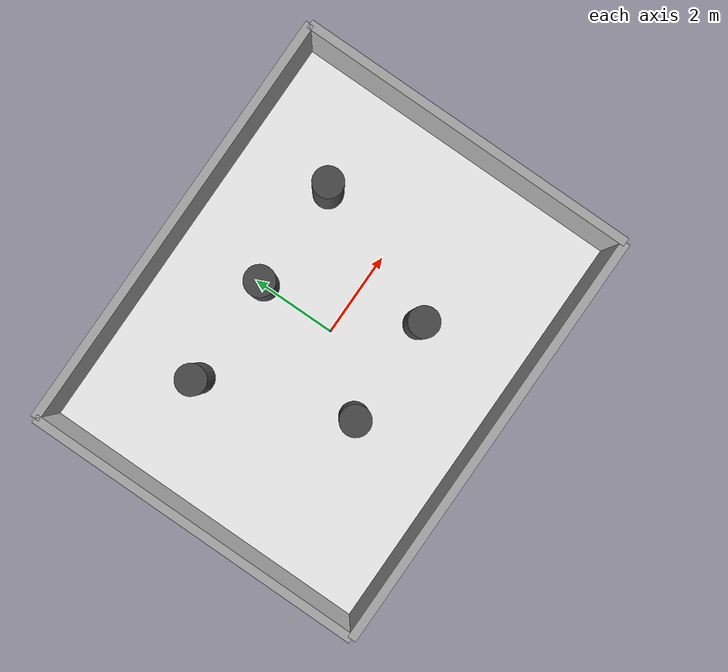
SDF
<?xml version="1.0"?>
<sdf version="1.10">
  <world name="hexapod_test">
    <!-- Gazebo Sensor System Pluins for IMU and LIDAR-->
    <plugin filename="gz-sim-physics-system"
            name="gz::sim::systems::Physics"/>

    <plugin filename="gz-sim-user-commands-system"
            name="gz::sim::systems::UserCommands"/>

    <plugin filename="gz-sim-scene-broadcaster-system"
            name="gz::sim::systems::SceneBroadcaster"/>

    <plugin filename="gz-sim-sensors-system"
            name="gz::sim::systems::Sensors">
      <render_engine>ogre2</render_engine>
    </plugin>

    <plugin filename="gz-sim-imu-system"
            name="gz::sim::systems::Imu"/>

    <!-- WORLD PHYSICS                                             -->

    <gravity>0 0 -9.81</gravity>

    <physics name="default_physics" type="ode">
      <max_step_size>0.001</max_step_size>
      <real_time_factor>1.0</real_time_factor>
      <real_time_update_rate>1000</real_time_update_rate>
    </physics>

    <!-- GROUND                                                    -->
    <!-- Gazebo-style dark grey                                    -->

    <model name="floor">
      <static>true</static>
      <pose>0 0 -0.05 0 0 0</pose>

      <link name="floor_link">

        <collision name="floor_collision">
          <geometry>
            <box>
              <size>10 8 0.1</size>
            </box>
          </geometry>

          <surface>
            <friction>
              <ode>
                <mu>1.0</mu>
                <mu2>1.0</mu2>
              </ode>
            </friction>
          </surface>
        </collision>

        <visual name="floor_visual">
         <geometry>
          <box>
           <size>10 8 0.1</size>
          </box>
         </geometry>

  <material>
    <ambient>0.9 0.9 0.9 1</ambient>
    <diffuse>1.0 1.0 1.0 1</diffuse>
  </material>
</visual>

      </link>
    </model>

    <!-- NORTH WALL                                                -->

    <model name="north_wall">
      <static>true</static>
      <pose>0 4 1 0 0 0</pose>

      <link name="north_wall_link">

        <collision name="collision">
          <geometry>
            <box>
              <size>10 0.2 2</size>
            </box>
          </geometry>
        </collision>

        <visual name="visual">
          <geometry>
            <box>
              <size>10 0.2 2</size>
            </box>
          </geometry>

          <material>
            <ambient>0.60 0.60 0.60 1</ambient>
            <diffuse>0.70 0.70 0.70 1</diffuse>
          </material>
        </visual>

      </link>
    </model>

    <!-- SOUTH WALL                                                -->

    <model name="south_wall">
      <static>true</static>
      <pose>0 -4 1 0 0 0</pose>

      <link name="south_wall_link">

        <collision name="collision">
          <geometry>
            <box>
              <size>10 0.2 2</size>
            </box>
          </geometry>
        </collision>

        <visual name="visual">
          <geometry>
            <box>
              <size>10 0.2 2</size>
            </box>
          </geometry>

          <material>
            <ambient>0.60 0.60 0.60 1</ambient>
            <diffuse>0.70 0.70 0.70 1</diffuse>
          </material>
        </visual>

      </link>
    </model>

    <!-- EAST WALL                                                 -->

    <model name="east_wall">
      <static>true</static>
      <pose>5 0 1 0 0 0</pose>

      <link name="east_wall_link">

        <collision name="collision">
          <geometry>
            <box>
              <size>0.2 8 2</size>
            </box>
          </geometry>
        </collision>

        <visual name="visual">
          <geometry>
            <box>
              <size>0.2 8 2</size>
            </box>
          </geometry>

          <material>
            <ambient>0.60 0.60 0.60 1</ambient>
            <diffuse>0.70 0.70 0.70 1</diffuse>
          </material>
        </visual>

      </link>
    </model>

    <!-- WEST WALL                                                 -->

    <model name="west_wall">
      <static>true</static>
      <pose>-5 0 1 0 0 0</pose>

      <link name="west_wall_link">

        <collision name="collision">
          <geometry>
            <box>
              <size>0.2 8 2</size>
            </box>
          </geometry>
        </collision>

        <visual name="visual">
          <geometry>
            <box>
              <size>0.2 8 2</size>
            </box>
          </geometry>

          <material>
            <ambient>0.60 0.60 0.60 1</ambient>
            <diffuse>0.70 0.70 0.70 1</diffuse>
          </material>
        </visual>

      </link>
    </model>

    <!-- PILLAR 1                                                  -->

    <model name="pillar1">
      <static>true</static>
      <pose>-2.5 1.8 1 0 0 0</pose>

      <link name="pillar1_link">

        <collision name="collision">
          <geometry>
            <cylinder>
              <radius>0.35</radius>
              <length>2</length>
            </cylinder>
          </geometry>
        </collision>

        <visual name="visual">
          <geometry>
            <cylinder>
              <radius>0.35</radius>
              <length>2</length>
            </cylinder>
          </geometry>

          <material>
            <ambient>0.20 0.20 0.20 1</ambient>
            <diffuse>0.30 0.30 0.30 1</diffuse>
          </material>
        </visual>

      </link>
    </model>

    <!-- PILLAR 2                                                  -->

    <model name="pillar2">
      <static>true</static>
      <pose>0 1.8 1 0 0 0</pose>

      <link name="pillar2_link">

        <collision name="collision">
          <geometry>
            <cylinder>
              <radius>0.35</radius>
              <length>2</length>
            </cylinder>
          </geometry>
        </collision>

        <visual name="visual">
          <geometry>
            <cylinder>
              <radius>0.35</radius>
              <length>2</length>
            </cylinder>
          </geometry>

          <material>
            <ambient>0.20 0.20 0.20 1</ambient>
            <diffuse>0.30 0.30 0.30 1</diffuse>
          </material>
        </visual>

      </link>
    </model>

    <!-- PILLAR 3                                                  -->

    <model name="pillar3">
      <static>true</static>
      <pose>2.5 1.8 1 0 0 0</pose>

      <link name="pillar3_link">

        <collision name="collision">
          <geometry>
            <cylinder>
              <radius>0.35</radius>
              <length>2</length>
            </cylinder>
          </geometry>
        </collision>

        <visual name="visual">
          <geometry>
            <cylinder>
              <radius>0.35</radius>
              <length>2</length>
            </cylinder>
          </geometry>

          <material>
            <ambient>0.20 0.20 0.20 1</ambient>
            <diffuse>0.30 0.30 0.30 1</diffuse>
          </material>
        </visual>

      </link>
    </model>

    <!-- PILLAR 4                                                  -->

    <model name="pillar4">
      <static>true</static>
      <pose>-1.25 -1.5 1 0 0 0</pose>

      <link name="pillar4_link">

        <collision name="collision">
          <geometry>
            <cylinder>
              <radius>0.35</radius>
              <length>2</length>
            </cylinder>
          </geometry>
        </collision>

        <visual name="visual">
          <geometry>
            <cylinder>
              <radius>0.35</radius>
              <length>2</length>
            </cylinder>
          </geometry>

          <material>
            <ambient>0.20 0.20 0.20 1</ambient>
            <diffuse>0.30 0.30 0.30 1</diffuse>
          </material>
        </visual>

      </link>
    </model>

    <!-- PILLAR 5                                                  -->

    <model name="pillar5">
      <static>true</static>
      <pose>1.25 -1.5 1 0 0 0</pose>

      <link name="pillar5_link">

        <collision name="collision">
          <geometry>
            <cylinder>
              <radius>0.35</radius>
              <length>2</length>
            </cylinder>
          </geometry>
        </collision>

        <visual name="visual">
          <geometry>
            <cylinder>
              <radius>0.35</radius>
              <length>2</length>
            </cylinder>
          </geometry>

          <material>
            <ambient>0.20 0.20 0.20 1</ambient>
            <diffuse>0.30 0.30 0.30 1</diffuse>
          </material>
        </visual>

      </link>
    </model>

  </world>
</sdf>
